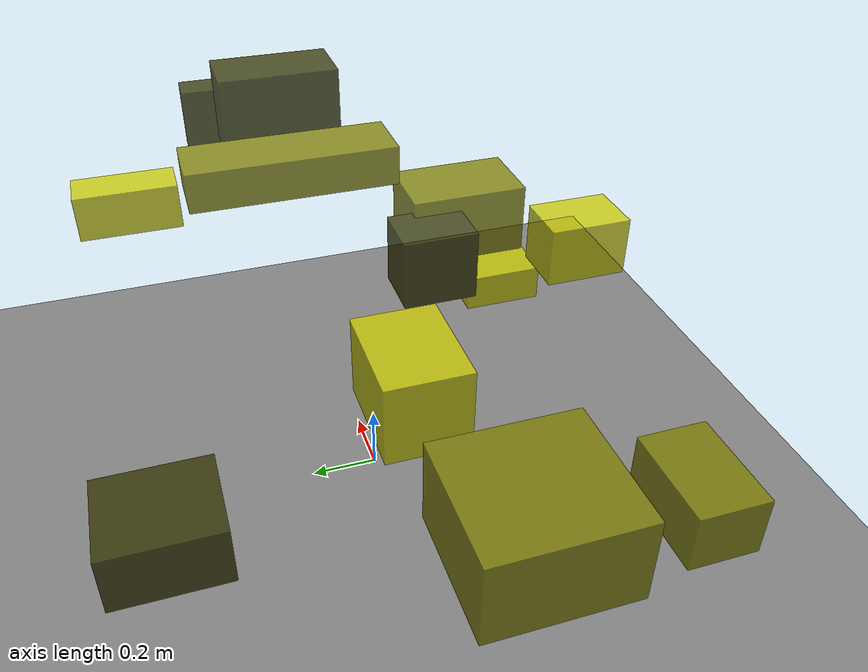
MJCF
<?xml version="1.0"?>
<mujoco model="obstacle_scene">
  <compiler angle="radian" coordinate="local"/>
  <option timestep="0.001" gravity="0 0 -9.81"/>

  <asset>
    <material name="obstacle_mat" rgba="0.8 0.8 0.0 0.8"/>
    <material name="ground_mat" rgba="0.5 0.5 0.5 1"/>
  </asset>

  <worldbody>
    <!-- Ground plane -->
    <geom name="ground" type="plane" size="3 3 0.1" material="ground_mat"/>

    <!-- Obstacles -->
    <body name="obstacle_0" pos="-0.258229 0.670844 0.176314">
      <geom name="obs_0" type="box" size="0.150716 0.173301 0.097018" rgba="0.2 0.2 0.0 0.8"/>
    </body>
    <body name="obstacle_1" pos="0.642904 -0.503366 0.496588">
      <geom name="obs_1" type="box" size="0.128020 0.201208 0.121383" rgba="0.5 0.5 0.0 0.8"/>
    </body>
    <body name="obstacle_2" pos="0.455738 0.609488 0.802211">
      <geom name="obs_2" type="box" size="0.064078 0.147113 0.067263" rgba="0.8 0.8 0.0 0.8"/>
    </body>
    <body name="obstacle_3" pos="0.305801 0.167476 1.116544">
      <geom name="obs_3" type="box" size="0.085885 0.158325 0.108958" rgba="0.2 0.2 0.0 0.8"/>
    </body>
    <body name="obstacle_4" pos="-0.540142 -0.827708 0.123820">
      <geom name="obs_4" type="box" size="0.171789 0.116136 0.101711" rgba="0.5 0.5 0.0 0.8"/>
    </body>
    <body name="obstacle_5" pos="0.201563 -0.749860 0.581155">
      <geom name="obs_5" type="box" size="0.092993 0.130988 0.095483" rgba="0.8 0.8 0.0 0.8"/>
    </body>
    <body name="obstacle_6" pos="0.450721 -0.342092 0.443043">
      <geom name="obs_6" type="box" size="0.100424 0.127961 0.123355" rgba="0.2 0.2 0.0 0.8"/>
    </body>
    <body name="obstacle_7" pos="-0.492137 0.278697 1.316134">
      <geom name="obs_7" type="box" size="0.062684 0.201430 0.038738" rgba="0.5 0.5 0.0 0.8"/>
    </body>
    <body name="obstacle_8" pos="-0.192543 -0.061330 0.463812">
      <geom name="obs_8" type="box" size="0.167600 0.127631 0.128057" rgba="0.8 0.8 0.0 0.8"/>
    </body>
    <body name="obstacle_9" pos="0.847925 0.333820 0.879468">
      <geom name="obs_9" type="box" size="0.051727 0.055107 0.105600" rgba="0.2 0.2 0.0 0.8"/>
    </body>
    <body name="obstacle_10" pos="-0.809837 -0.157064 0.518942">
      <geom name="obs_10" type="box" size="0.191185 0.202077 0.122825" rgba="0.5 0.5 0.0 0.8"/>
    </body>
    <body name="obstacle_11" pos="0.547205 -0.618700 0.255407">
      <geom name="obs_11" type="box" size="0.092978 0.134047 0.061671" rgba="0.8 0.8 0.0 0.8"/>
    </body>
  </worldbody>
</mujoco>
